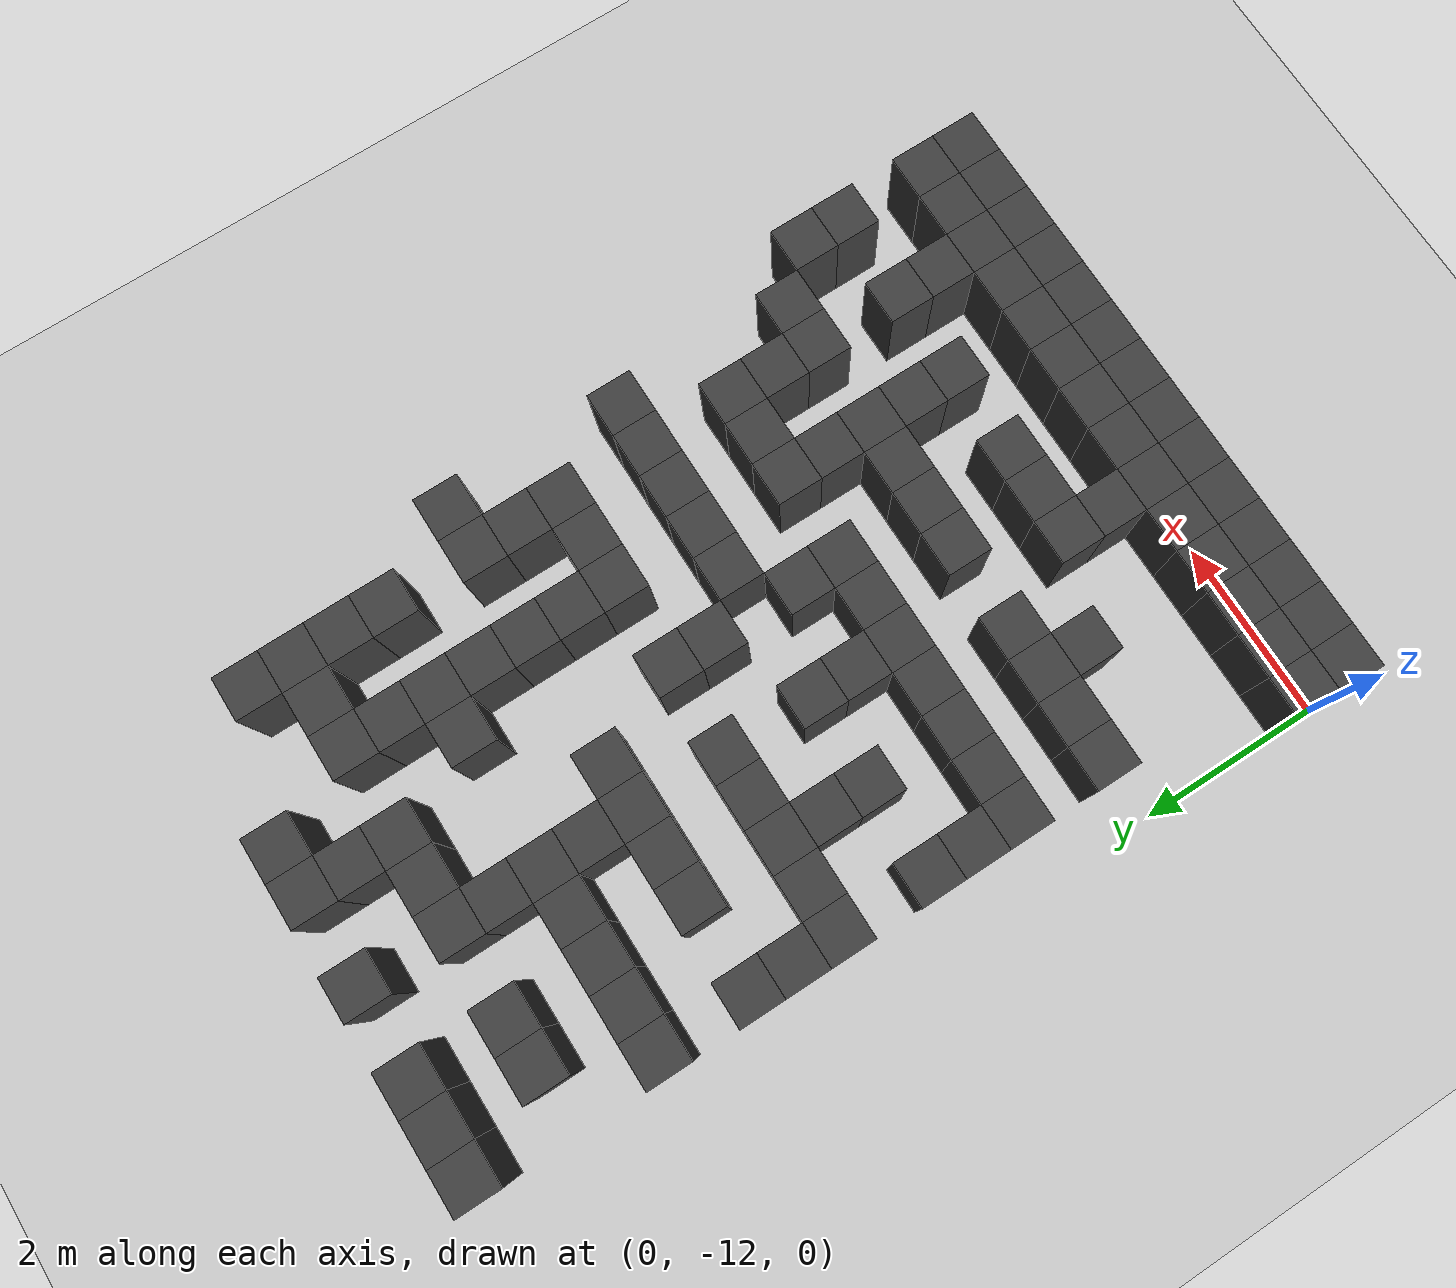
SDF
<sdf version="1.7">
 <world name="map_16048">
  <model name="ground_plane">
   <static>true</static>
   <link name="link">
    <collision name="collision">
     <geometry><plane><normal>0 0 1</normal><size>200 200</size></plane></geometry>
    </collision>
    <visual name="visual">
     <geometry><plane><normal>0 0 1</normal><size>200 200</size></plane></geometry>
     <material><ambient>0.8 0.8 0.8 1</ambient><diffuse>0.8 0.8 0.8 1</diffuse></material>
    </visual>
   </link>
  </model>
  <model name="maze_environment">
   <static>true</static>
   <link name="wall_730">
    <pose>0.750 -2.750 0.500 0 0 0</pose>
    <collision name="col"><geometry><box><size>0.5 0.5 1.0</size></box></geometry></collision>
    <visual name="vis">
     <geometry><box><size>0.5 0.5 1.0</size></box></geometry>
     <material><ambient>0.15 0.15 0.15 1</ambient><diffuse>0.25 0.25 0.25 1</diffuse></material>
    </visual>
   </link>
   <link name="wall_731">
    <pose>1.250 -2.750 0.500 0 0 0</pose>
    <collision name="col"><geometry><box><size>0.5 0.5 1.0</size></box></geometry></collision>
    <visual name="vis">
     <geometry><box><size>0.5 0.5 1.0</size></box></geometry>
     <material><ambient>0.15 0.15 0.15 1</ambient><diffuse>0.25 0.25 0.25 1</diffuse></material>
    </visual>
   </link>
   <link name="wall_732">
    <pose>1.750 -2.750 0.500 0 0 0</pose>
    <collision name="col"><geometry><box><size>0.5 0.5 1.0</size></box></geometry></collision>
    <visual name="vis">
     <geometry><box><size>0.5 0.5 1.0</size></box></geometry>
     <material><ambient>0.15 0.15 0.15 1</ambient><diffuse>0.25 0.25 0.25 1</diffuse></material>
    </visual>
   </link>
   <link name="wall_733">
    <pose>2.750 -2.750 0.500 0 0 0</pose>
    <collision name="col"><geometry><box><size>0.5 0.5 1.0</size></box></geometry></collision>
    <visual name="vis">
     <geometry><box><size>0.5 0.5 1.0</size></box></geometry>
     <material><ambient>0.15 0.15 0.15 1</ambient><diffuse>0.25 0.25 0.25 1</diffuse></material>
    </visual>
   </link>
   <link name="wall_734">
    <pose>3.750 -2.750 0.500 0 0 0</pose>
    <collision name="col"><geometry><box><size>0.5 0.5 1.0</size></box></geometry></collision>
    <visual name="vis">
     <geometry><box><size>0.5 0.5 1.0</size></box></geometry>
     <material><ambient>0.15 0.15 0.15 1</ambient><diffuse>0.25 0.25 0.25 1</diffuse></material>
    </visual>
   </link>
   <link name="wall_735">
    <pose>4.250 -2.750 0.500 0 0 0</pose>
    <collision name="col"><geometry><box><size>0.5 0.5 1.0</size></box></geometry></collision>
    <visual name="vis">
     <geometry><box><size>0.5 0.5 1.0</size></box></geometry>
     <material><ambient>0.15 0.15 0.15 1</ambient><diffuse>0.25 0.25 0.25 1</diffuse></material>
    </visual>
   </link>
   <link name="wall_756">
    <pose>3.750 -3.250 0.500 0 0 0</pose>
    <collision name="col"><geometry><box><size>0.5 0.5 1.0</size></box></geometry></collision>
    <visual name="vis">
     <geometry><box><size>0.5 0.5 1.0</size></box></geometry>
     <material><ambient>0.15 0.15 0.15 1</ambient><diffuse>0.25 0.25 0.25 1</diffuse></material>
    </visual>
   </link>
   <link name="wall_757">
    <pose>5.750 -3.250 0.500 0 0 0</pose>
    <collision name="col"><geometry><box><size>0.5 0.5 1.0</size></box></geometry></collision>
    <visual name="vis">
     <geometry><box><size>0.5 0.5 1.0</size></box></geometry>
     <material><ambient>0.15 0.15 0.15 1</ambient><diffuse>0.25 0.25 0.25 1</diffuse></material>
    </visual>
   </link>
   <link name="wall_778">
    <pose>1.250 -3.750 0.500 0 0 0</pose>
    <collision name="col"><geometry><box><size>0.5 0.5 1.0</size></box></geometry></collision>
    <visual name="vis">
     <geometry><box><size>0.5 0.5 1.0</size></box></geometry>
     <material><ambient>0.15 0.15 0.15 1</ambient><diffuse>0.25 0.25 0.25 1</diffuse></material>
    </visual>
   </link>
   <link name="wall_779">
    <pose>1.750 -3.750 0.500 0 0 0</pose>
    <collision name="col"><geometry><box><size>0.5 0.5 1.0</size></box></geometry></collision>
    <visual name="vis">
     <geometry><box><size>0.5 0.5 1.0</size></box></geometry>
     <material><ambient>0.15 0.15 0.15 1</ambient><diffuse>0.25 0.25 0.25 1</diffuse></material>
    </visual>
   </link>
   <link name="wall_780">
    <pose>2.750 -3.750 0.500 0 0 0</pose>
    <collision name="col"><geometry><box><size>0.5 0.5 1.0</size></box></geometry></collision>
    <visual name="vis">
     <geometry><box><size>0.5 0.5 1.0</size></box></geometry>
     <material><ambient>0.15 0.15 0.15 1</ambient><diffuse>0.25 0.25 0.25 1</diffuse></material>
    </visual>
   </link>
   <link name="wall_781">
    <pose>3.250 -3.750 0.500 0 0 0</pose>
    <collision name="col"><geometry><box><size>0.5 0.5 1.0</size></box></geometry></collision>
    <visual name="vis">
     <geometry><box><size>0.5 0.5 1.0</size></box></geometry>
     <material><ambient>0.15 0.15 0.15 1</ambient><diffuse>0.25 0.25 0.25 1</diffuse></material>
    </visual>
   </link>
   <link name="wall_782">
    <pose>3.750 -3.750 0.500 0 0 0</pose>
    <collision name="col"><geometry><box><size>0.5 0.5 1.0</size></box></geometry></collision>
    <visual name="vis">
     <geometry><box><size>0.5 0.5 1.0</size></box></geometry>
     <material><ambient>0.15 0.15 0.15 1</ambient><diffuse>0.25 0.25 0.25 1</diffuse></material>
    </visual>
   </link>
   <link name="wall_783">
    <pose>4.750 -3.750 0.500 0 0 0</pose>
    <collision name="col"><geometry><box><size>0.5 0.5 1.0</size></box></geometry></collision>
    <visual name="vis">
     <geometry><box><size>0.5 0.5 1.0</size></box></geometry>
     <material><ambient>0.15 0.15 0.15 1</ambient><diffuse>0.25 0.25 0.25 1</diffuse></material>
    </visual>
   </link>
   <link name="wall_784">
    <pose>5.250 -3.750 0.500 0 0 0</pose>
    <collision name="col"><geometry><box><size>0.5 0.5 1.0</size></box></geometry></collision>
    <visual name="vis">
     <geometry><box><size>0.5 0.5 1.0</size></box></geometry>
     <material><ambient>0.15 0.15 0.15 1</ambient><diffuse>0.25 0.25 0.25 1</diffuse></material>
    </visual>
   </link>
   <link name="wall_785">
    <pose>5.750 -3.750 0.500 0 0 0</pose>
    <collision name="col"><geometry><box><size>0.5 0.5 1.0</size></box></geometry></collision>
    <visual name="vis">
     <geometry><box><size>0.5 0.5 1.0</size></box></geometry>
     <material><ambient>0.15 0.15 0.15 1</ambient><diffuse>0.25 0.25 0.25 1</diffuse></material>
    </visual>
   </link>
   <link name="wall_802">
    <pose>2.750 -4.250 0.500 0 0 0</pose>
    <collision name="col"><geometry><box><size>0.5 0.5 1.0</size></box></geometry></collision>
    <visual name="vis">
     <geometry><box><size>0.5 0.5 1.0</size></box></geometry>
     <material><ambient>0.15 0.15 0.15 1</ambient><diffuse>0.25 0.25 0.25 1</diffuse></material>
    </visual>
   </link>
   <link name="wall_803">
    <pose>4.750 -4.250 0.500 0 0 0</pose>
    <collision name="col"><geometry><box><size>0.5 0.5 1.0</size></box></geometry></collision>
    <visual name="vis">
     <geometry><box><size>0.5 0.5 1.0</size></box></geometry>
     <material><ambient>0.15 0.15 0.15 1</ambient><diffuse>0.25 0.25 0.25 1</diffuse></material>
    </visual>
   </link>
   <link name="wall_804">
    <pose>5.750 -4.250 0.500 0 0 0</pose>
    <collision name="col"><geometry><box><size>0.5 0.5 1.0</size></box></geometry></collision>
    <visual name="vis">
     <geometry><box><size>0.5 0.5 1.0</size></box></geometry>
     <material><ambient>0.15 0.15 0.15 1</ambient><diffuse>0.25 0.25 0.25 1</diffuse></material>
    </visual>
   </link>
   <link name="wall_827">
    <pose>0.750 -4.750 0.500 0 0 0</pose>
    <collision name="col"><geometry><box><size>0.5 0.5 1.0</size></box></geometry></collision>
    <visual name="vis">
     <geometry><box><size>0.5 0.5 1.0</size></box></geometry>
     <material><ambient>0.15 0.15 0.15 1</ambient><diffuse>0.25 0.25 0.25 1</diffuse></material>
    </visual>
   </link>
   <link name="wall_828">
    <pose>1.250 -4.750 0.500 0 0 0</pose>
    <collision name="col"><geometry><box><size>0.5 0.5 1.0</size></box></geometry></collision>
    <visual name="vis">
     <geometry><box><size>0.5 0.5 1.0</size></box></geometry>
     <material><ambient>0.15 0.15 0.15 1</ambient><diffuse>0.25 0.25 0.25 1</diffuse></material>
    </visual>
   </link>
   <link name="wall_829">
    <pose>1.750 -4.750 0.500 0 0 0</pose>
    <collision name="col"><geometry><box><size>0.5 0.5 1.0</size></box></geometry></collision>
    <visual name="vis">
     <geometry><box><size>0.5 0.5 1.0</size></box></geometry>
     <material><ambient>0.15 0.15 0.15 1</ambient><diffuse>0.25 0.25 0.25 1</diffuse></material>
    </visual>
   </link>
   <link name="wall_830">
    <pose>2.250 -4.750 0.500 0 0 0</pose>
    <collision name="col"><geometry><box><size>0.5 0.5 1.0</size></box></geometry></collision>
    <visual name="vis">
     <geometry><box><size>0.5 0.5 1.0</size></box></geometry>
     <material><ambient>0.15 0.15 0.15 1</ambient><diffuse>0.25 0.25 0.25 1</diffuse></material>
    </visual>
   </link>
   <link name="wall_831">
    <pose>2.750 -4.750 0.500 0 0 0</pose>
    <collision name="col"><geometry><box><size>0.5 0.5 1.0</size></box></geometry></collision>
    <visual name="vis">
     <geometry><box><size>0.5 0.5 1.0</size></box></geometry>
     <material><ambient>0.15 0.15 0.15 1</ambient><diffuse>0.25 0.25 0.25 1</diffuse></material>
    </visual>
   </link>
   <link name="wall_832">
    <pose>4.250 -4.750 0.500 0 0 0</pose>
    <collision name="col"><geometry><box><size>0.5 0.5 1.0</size></box></geometry></collision>
    <visual name="vis">
     <geometry><box><size>0.5 0.5 1.0</size></box></geometry>
     <material><ambient>0.15 0.15 0.15 1</ambient><diffuse>0.25 0.25 0.25 1</diffuse></material>
    </visual>
   </link>
   <link name="wall_833">
    <pose>4.750 -4.750 0.500 0 0 0</pose>
    <collision name="col"><geometry><box><size>0.5 0.5 1.0</size></box></geometry></collision>
    <visual name="vis">
     <geometry><box><size>0.5 0.5 1.0</size></box></geometry>
     <material><ambient>0.15 0.15 0.15 1</ambient><diffuse>0.25 0.25 0.25 1</diffuse></material>
    </visual>
   </link>
   <link name="wall_834">
    <pose>5.750 -4.750 0.500 0 0 0</pose>
    <collision name="col"><geometry><box><size>0.5 0.5 1.0</size></box></geometry></collision>
    <visual name="vis">
     <geometry><box><size>0.5 0.5 1.0</size></box></geometry>
     <material><ambient>0.15 0.15 0.15 1</ambient><diffuse>0.25 0.25 0.25 1</diffuse></material>
    </visual>
   </link>
   <link name="wall_850">
    <pose>2.750 -5.250 0.500 0 0 0</pose>
    <collision name="col"><geometry><box><size>0.5 0.5 1.0</size></box></geometry></collision>
    <visual name="vis">
     <geometry><box><size>0.5 0.5 1.0</size></box></geometry>
     <material><ambient>0.15 0.15 0.15 1</ambient><diffuse>0.25 0.25 0.25 1</diffuse></material>
    </visual>
   </link>
   <link name="wall_851">
    <pose>4.750 -5.250 0.500 0 0 0</pose>
    <collision name="col"><geometry><box><size>0.5 0.5 1.0</size></box></geometry></collision>
    <visual name="vis">
     <geometry><box><size>0.5 0.5 1.0</size></box></geometry>
     <material><ambient>0.15 0.15 0.15 1</ambient><diffuse>0.25 0.25 0.25 1</diffuse></material>
    </visual>
   </link>
   <link name="wall_873">
    <pose>0.750 -5.750 0.500 0 0 0</pose>
    <collision name="col"><geometry><box><size>0.5 0.5 1.0</size></box></geometry></collision>
    <visual name="vis">
     <geometry><box><size>0.5 0.5 1.0</size></box></geometry>
     <material><ambient>0.15 0.15 0.15 1</ambient><diffuse>0.25 0.25 0.25 1</diffuse></material>
    </visual>
   </link>
   <link name="wall_874">
    <pose>1.750 -5.750 0.500 0 0 0</pose>
    <collision name="col"><geometry><box><size>0.5 0.5 1.0</size></box></geometry></collision>
    <visual name="vis">
     <geometry><box><size>0.5 0.5 1.0</size></box></geometry>
     <material><ambient>0.15 0.15 0.15 1</ambient><diffuse>0.25 0.25 0.25 1</diffuse></material>
    </visual>
   </link>
   <link name="wall_875">
    <pose>2.250 -5.750 0.500 0 0 0</pose>
    <collision name="col"><geometry><box><size>0.5 0.5 1.0</size></box></geometry></collision>
    <visual name="vis">
     <geometry><box><size>0.5 0.5 1.0</size></box></geometry>
     <material><ambient>0.15 0.15 0.15 1</ambient><diffuse>0.25 0.25 0.25 1</diffuse></material>
    </visual>
   </link>
   <link name="wall_876">
    <pose>2.750 -5.750 0.500 0 0 0</pose>
    <collision name="col"><geometry><box><size>0.5 0.5 1.0</size></box></geometry></collision>
    <visual name="vis">
     <geometry><box><size>0.5 0.5 1.0</size></box></geometry>
     <material><ambient>0.15 0.15 0.15 1</ambient><diffuse>0.25 0.25 0.25 1</diffuse></material>
    </visual>
   </link>
   <link name="wall_877">
    <pose>3.250 -5.750 0.500 0 0 0</pose>
    <collision name="col"><geometry><box><size>0.5 0.5 1.0</size></box></geometry></collision>
    <visual name="vis">
     <geometry><box><size>0.5 0.5 1.0</size></box></geometry>
     <material><ambient>0.15 0.15 0.15 1</ambient><diffuse>0.25 0.25 0.25 1</diffuse></material>
    </visual>
   </link>
   <link name="wall_878">
    <pose>4.750 -5.750 0.500 0 0 0</pose>
    <collision name="col"><geometry><box><size>0.5 0.5 1.0</size></box></geometry></collision>
    <visual name="vis">
     <geometry><box><size>0.5 0.5 1.0</size></box></geometry>
     <material><ambient>0.15 0.15 0.15 1</ambient><diffuse>0.25 0.25 0.25 1</diffuse></material>
    </visual>
   </link>
   <link name="wall_879">
    <pose>5.750 -5.750 0.500 0 0 0</pose>
    <collision name="col"><geometry><box><size>0.5 0.5 1.0</size></box></geometry></collision>
    <visual name="vis">
     <geometry><box><size>0.5 0.5 1.0</size></box></geometry>
     <material><ambient>0.15 0.15 0.15 1</ambient><diffuse>0.25 0.25 0.25 1</diffuse></material>
    </visual>
   </link>
   <link name="wall_880">
    <pose>6.250 -5.750 0.500 0 0 0</pose>
    <collision name="col"><geometry><box><size>0.5 0.5 1.0</size></box></geometry></collision>
    <visual name="vis">
     <geometry><box><size>0.5 0.5 1.0</size></box></geometry>
     <material><ambient>0.15 0.15 0.15 1</ambient><diffuse>0.25 0.25 0.25 1</diffuse></material>
    </visual>
   </link>
   <link name="wall_898">
    <pose>0.750 -6.250 0.500 0 0 0</pose>
    <collision name="col"><geometry><box><size>0.5 0.5 1.0</size></box></geometry></collision>
    <visual name="vis">
     <geometry><box><size>0.5 0.5 1.0</size></box></geometry>
     <material><ambient>0.15 0.15 0.15 1</ambient><diffuse>0.25 0.25 0.25 1</diffuse></material>
    </visual>
   </link>
   <link name="wall_899">
    <pose>4.750 -6.250 0.500 0 0 0</pose>
    <collision name="col"><geometry><box><size>0.5 0.5 1.0</size></box></geometry></collision>
    <visual name="vis">
     <geometry><box><size>0.5 0.5 1.0</size></box></geometry>
     <material><ambient>0.15 0.15 0.15 1</ambient><diffuse>0.25 0.25 0.25 1</diffuse></material>
    </visual>
   </link>
   <link name="wall_900">
    <pose>5.750 -6.250 0.500 0 0 0</pose>
    <collision name="col"><geometry><box><size>0.5 0.5 1.0</size></box></geometry></collision>
    <visual name="vis">
     <geometry><box><size>0.5 0.5 1.0</size></box></geometry>
     <material><ambient>0.15 0.15 0.15 1</ambient><diffuse>0.25 0.25 0.25 1</diffuse></material>
    </visual>
   </link>
   <link name="wall_920">
    <pose>0.750 -6.750 0.500 0 0 0</pose>
    <collision name="col"><geometry><box><size>0.5 0.5 1.0</size></box></geometry></collision>
    <visual name="vis">
     <geometry><box><size>0.5 0.5 1.0</size></box></geometry>
     <material><ambient>0.15 0.15 0.15 1</ambient><diffuse>0.25 0.25 0.25 1</diffuse></material>
    </visual>
   </link>
   <link name="wall_921">
    <pose>1.250 -6.750 0.500 0 0 0</pose>
    <collision name="col"><geometry><box><size>0.5 0.5 1.0</size></box></geometry></collision>
    <visual name="vis">
     <geometry><box><size>0.5 0.5 1.0</size></box></geometry>
     <material><ambient>0.15 0.15 0.15 1</ambient><diffuse>0.25 0.25 0.25 1</diffuse></material>
    </visual>
   </link>
   <link name="wall_922">
    <pose>1.750 -6.750 0.500 0 0 0</pose>
    <collision name="col"><geometry><box><size>0.5 0.5 1.0</size></box></geometry></collision>
    <visual name="vis">
     <geometry><box><size>0.5 0.5 1.0</size></box></geometry>
     <material><ambient>0.15 0.15 0.15 1</ambient><diffuse>0.25 0.25 0.25 1</diffuse></material>
    </visual>
   </link>
   <link name="wall_923">
    <pose>2.250 -6.750 0.500 0 0 0</pose>
    <collision name="col"><geometry><box><size>0.5 0.5 1.0</size></box></geometry></collision>
    <visual name="vis">
     <geometry><box><size>0.5 0.5 1.0</size></box></geometry>
     <material><ambient>0.15 0.15 0.15 1</ambient><diffuse>0.25 0.25 0.25 1</diffuse></material>
    </visual>
   </link>
   <link name="wall_924">
    <pose>2.750 -6.750 0.500 0 0 0</pose>
    <collision name="col"><geometry><box><size>0.5 0.5 1.0</size></box></geometry></collision>
    <visual name="vis">
     <geometry><box><size>0.5 0.5 1.0</size></box></geometry>
     <material><ambient>0.15 0.15 0.15 1</ambient><diffuse>0.25 0.25 0.25 1</diffuse></material>
    </visual>
   </link>
   <link name="wall_925">
    <pose>3.750 -6.750 0.500 0 0 0</pose>
    <collision name="col"><geometry><box><size>0.5 0.5 1.0</size></box></geometry></collision>
    <visual name="vis">
     <geometry><box><size>0.5 0.5 1.0</size></box></geometry>
     <material><ambient>0.15 0.15 0.15 1</ambient><diffuse>0.25 0.25 0.25 1</diffuse></material>
    </visual>
   </link>
   <link name="wall_926">
    <pose>4.750 -6.750 0.500 0 0 0</pose>
    <collision name="col"><geometry><box><size>0.5 0.5 1.0</size></box></geometry></collision>
    <visual name="vis">
     <geometry><box><size>0.5 0.5 1.0</size></box></geometry>
     <material><ambient>0.15 0.15 0.15 1</ambient><diffuse>0.25 0.25 0.25 1</diffuse></material>
    </visual>
   </link>
   <link name="wall_927">
    <pose>5.250 -6.750 0.500 0 0 0</pose>
    <collision name="col"><geometry><box><size>0.5 0.5 1.0</size></box></geometry></collision>
    <visual name="vis">
     <geometry><box><size>0.5 0.5 1.0</size></box></geometry>
     <material><ambient>0.15 0.15 0.15 1</ambient><diffuse>0.25 0.25 0.25 1</diffuse></material>
    </visual>
   </link>
   <link name="wall_928">
    <pose>5.750 -6.750 0.500 0 0 0</pose>
    <collision name="col"><geometry><box><size>0.5 0.5 1.0</size></box></geometry></collision>
    <visual name="vis">
     <geometry><box><size>0.5 0.5 1.0</size></box></geometry>
     <material><ambient>0.15 0.15 0.15 1</ambient><diffuse>0.25 0.25 0.25 1</diffuse></material>
    </visual>
   </link>
   <link name="wall_939">
    <pose>1.750 -7.250 0.500 0 0 0</pose>
    <collision name="col"><geometry><box><size>0.5 0.5 1.0</size></box></geometry></collision>
    <visual name="vis">
     <geometry><box><size>0.5 0.5 1.0</size></box></geometry>
     <material><ambient>0.15 0.15 0.15 1</ambient><diffuse>0.25 0.25 0.25 1</diffuse></material>
    </visual>
   </link>
   <link name="wall_940">
    <pose>3.750 -7.250 0.500 0 0 0</pose>
    <collision name="col"><geometry><box><size>0.5 0.5 1.0</size></box></geometry></collision>
    <visual name="vis">
     <geometry><box><size>0.5 0.5 1.0</size></box></geometry>
     <material><ambient>0.15 0.15 0.15 1</ambient><diffuse>0.25 0.25 0.25 1</diffuse></material>
    </visual>
   </link>
   <link name="wall_966">
    <pose>0.750 -7.750 0.500 0 0 0</pose>
    <collision name="col"><geometry><box><size>0.5 0.5 1.0</size></box></geometry></collision>
    <visual name="vis">
     <geometry><box><size>0.5 0.5 1.0</size></box></geometry>
     <material><ambient>0.15 0.15 0.15 1</ambient><diffuse>0.25 0.25 0.25 1</diffuse></material>
    </visual>
   </link>
   <link name="wall_967">
    <pose>1.750 -7.750 0.500 0 0 0</pose>
    <collision name="col"><geometry><box><size>0.5 0.5 1.0</size></box></geometry></collision>
    <visual name="vis">
     <geometry><box><size>0.5 0.5 1.0</size></box></geometry>
     <material><ambient>0.15 0.15 0.15 1</ambient><diffuse>0.25 0.25 0.25 1</diffuse></material>
    </visual>
   </link>
   <link name="wall_968">
    <pose>2.750 -7.750 0.500 0 0 0</pose>
    <collision name="col"><geometry><box><size>0.5 0.5 1.0</size></box></geometry></collision>
    <visual name="vis">
     <geometry><box><size>0.5 0.5 1.0</size></box></geometry>
     <material><ambient>0.15 0.15 0.15 1</ambient><diffuse>0.25 0.25 0.25 1</diffuse></material>
    </visual>
   </link>
   <link name="wall_969">
    <pose>4.250 -7.750 0.500 0 0 0</pose>
    <collision name="col"><geometry><box><size>0.5 0.5 1.0</size></box></geometry></collision>
    <visual name="vis">
     <geometry><box><size>0.5 0.5 1.0</size></box></geometry>
     <material><ambient>0.15 0.15 0.15 1</ambient><diffuse>0.25 0.25 0.25 1</diffuse></material>
    </visual>
   </link>
   <link name="wall_970">
    <pose>4.750 -7.750 0.500 0 0 0</pose>
    <collision name="col"><geometry><box><size>0.5 0.5 1.0</size></box></geometry></collision>
    <visual name="vis">
     <geometry><box><size>0.5 0.5 1.0</size></box></geometry>
     <material><ambient>0.15 0.15 0.15 1</ambient><diffuse>0.25 0.25 0.25 1</diffuse></material>
    </visual>
   </link>
   <link name="wall_971">
    <pose>5.250 -7.750 0.500 0 0 0</pose>
    <collision name="col"><geometry><box><size>0.5 0.5 1.0</size></box></geometry></collision>
    <visual name="vis">
     <geometry><box><size>0.5 0.5 1.0</size></box></geometry>
     <material><ambient>0.15 0.15 0.15 1</ambient><diffuse>0.25 0.25 0.25 1</diffuse></material>
    </visual>
   </link>
   <link name="wall_972">
    <pose>5.750 -7.750 0.500 0 0 0</pose>
    <collision name="col"><geometry><box><size>0.5 0.5 1.0</size></box></geometry></collision>
    <visual name="vis">
     <geometry><box><size>0.5 0.5 1.0</size></box></geometry>
     <material><ambient>0.15 0.15 0.15 1</ambient><diffuse>0.25 0.25 0.25 1</diffuse></material>
    </visual>
   </link>
   <link name="wall_973">
    <pose>6.250 -7.750 0.500 0 0 0</pose>
    <collision name="col"><geometry><box><size>0.5 0.5 1.0</size></box></geometry></collision>
    <visual name="vis">
     <geometry><box><size>0.5 0.5 1.0</size></box></geometry>
     <material><ambient>0.15 0.15 0.15 1</ambient><diffuse>0.25 0.25 0.25 1</diffuse></material>
    </visual>
   </link>
   <link name="wall_987">
    <pose>0.750 -8.250 0.500 0 0 0</pose>
    <collision name="col"><geometry><box><size>0.5 0.5 1.0</size></box></geometry></collision>
    <visual name="vis">
     <geometry><box><size>0.5 0.5 1.0</size></box></geometry>
     <material><ambient>0.15 0.15 0.15 1</ambient><diffuse>0.25 0.25 0.25 1</diffuse></material>
    </visual>
   </link>
   <link name="wall_988">
    <pose>2.750 -8.250 0.500 0 0 0</pose>
    <collision name="col"><geometry><box><size>0.5 0.5 1.0</size></box></geometry></collision>
    <visual name="vis">
     <geometry><box><size>0.5 0.5 1.0</size></box></geometry>
     <material><ambient>0.15 0.15 0.15 1</ambient><diffuse>0.25 0.25 0.25 1</diffuse></material>
    </visual>
   </link>
   <link name="wall_989">
    <pose>3.750 -8.250 0.500 0 0 0</pose>
    <collision name="col"><geometry><box><size>0.5 0.5 1.0</size></box></geometry></collision>
    <visual name="vis">
     <geometry><box><size>0.5 0.5 1.0</size></box></geometry>
     <material><ambient>0.15 0.15 0.15 1</ambient><diffuse>0.25 0.25 0.25 1</diffuse></material>
    </visual>
   </link>
   <link name="wall_1011">
    <pose>0.750 -8.750 0.500 0 0 0</pose>
    <collision name="col"><geometry><box><size>0.5 0.5 1.0</size></box></geometry></collision>
    <visual name="vis">
     <geometry><box><size>0.5 0.5 1.0</size></box></geometry>
     <material><ambient>0.15 0.15 0.15 1</ambient><diffuse>0.25 0.25 0.25 1</diffuse></material>
    </visual>
   </link>
   <link name="wall_1012">
    <pose>1.250 -8.750 0.500 0 0 0</pose>
    <collision name="col"><geometry><box><size>0.5 0.5 1.0</size></box></geometry></collision>
    <visual name="vis">
     <geometry><box><size>0.5 0.5 1.0</size></box></geometry>
     <material><ambient>0.15 0.15 0.15 1</ambient><diffuse>0.25 0.25 0.25 1</diffuse></material>
    </visual>
   </link>
   <link name="wall_1013">
    <pose>1.750 -8.750 0.500 0 0 0</pose>
    <collision name="col"><geometry><box><size>0.5 0.5 1.0</size></box></geometry></collision>
    <visual name="vis">
     <geometry><box><size>0.5 0.5 1.0</size></box></geometry>
     <material><ambient>0.15 0.15 0.15 1</ambient><diffuse>0.25 0.25 0.25 1</diffuse></material>
    </visual>
   </link>
   <link name="wall_1014">
    <pose>2.250 -8.750 0.500 0 0 0</pose>
    <collision name="col"><geometry><box><size>0.5 0.5 1.0</size></box></geometry></collision>
    <visual name="vis">
     <geometry><box><size>0.5 0.5 1.0</size></box></geometry>
     <material><ambient>0.15 0.15 0.15 1</ambient><diffuse>0.25 0.25 0.25 1</diffuse></material>
    </visual>
   </link>
   <link name="wall_1015">
    <pose>2.750 -8.750 0.500 0 0 0</pose>
    <collision name="col"><geometry><box><size>0.5 0.5 1.0</size></box></geometry></collision>
    <visual name="vis">
     <geometry><box><size>0.5 0.5 1.0</size></box></geometry>
     <material><ambient>0.15 0.15 0.15 1</ambient><diffuse>0.25 0.25 0.25 1</diffuse></material>
    </visual>
   </link>
   <link name="wall_1016">
    <pose>3.250 -8.750 0.500 0 0 0</pose>
    <collision name="col"><geometry><box><size>0.5 0.5 1.0</size></box></geometry></collision>
    <visual name="vis">
     <geometry><box><size>0.5 0.5 1.0</size></box></geometry>
     <material><ambient>0.15 0.15 0.15 1</ambient><diffuse>0.25 0.25 0.25 1</diffuse></material>
    </visual>
   </link>
   <link name="wall_1017">
    <pose>3.750 -8.750 0.500 0 0 0</pose>
    <collision name="col"><geometry><box><size>0.5 0.5 1.0</size></box></geometry></collision>
    <visual name="vis">
     <geometry><box><size>0.5 0.5 1.0</size></box></geometry>
     <material><ambient>0.15 0.15 0.15 1</ambient><diffuse>0.25 0.25 0.25 1</diffuse></material>
    </visual>
   </link>
   <link name="wall_1018">
    <pose>4.750 -8.750 0.500 0 0 0</pose>
    <collision name="col"><geometry><box><size>0.5 0.5 1.0</size></box></geometry></collision>
    <visual name="vis">
     <geometry><box><size>0.5 0.5 1.0</size></box></geometry>
     <material><ambient>0.15 0.15 0.15 1</ambient><diffuse>0.25 0.25 0.25 1</diffuse></material>
    </visual>
   </link>
   <link name="wall_1019">
    <pose>5.250 -8.750 0.500 0 0 0</pose>
    <collision name="col"><geometry><box><size>0.5 0.5 1.0</size></box></geometry></collision>
    <visual name="vis">
     <geometry><box><size>0.5 0.5 1.0</size></box></geometry>
     <material><ambient>0.15 0.15 0.15 1</ambient><diffuse>0.25 0.25 0.25 1</diffuse></material>
    </visual>
   </link>
   <link name="wall_1020">
    <pose>5.750 -8.750 0.500 0 0 0</pose>
    <collision name="col"><geometry><box><size>0.5 0.5 1.0</size></box></geometry></collision>
    <visual name="vis">
     <geometry><box><size>0.5 0.5 1.0</size></box></geometry>
     <material><ambient>0.15 0.15 0.15 1</ambient><diffuse>0.25 0.25 0.25 1</diffuse></material>
    </visual>
   </link>
   <link name="wall_1036">
    <pose>4.750 -9.250 0.500 0 0 0</pose>
    <collision name="col"><geometry><box><size>0.5 0.5 1.0</size></box></geometry></collision>
    <visual name="vis">
     <geometry><box><size>0.5 0.5 1.0</size></box></geometry>
     <material><ambient>0.15 0.15 0.15 1</ambient><diffuse>0.25 0.25 0.25 1</diffuse></material>
    </visual>
   </link>
   <link name="wall_1037">
    <pose>5.750 -9.250 0.500 0 0 0</pose>
    <collision name="col"><geometry><box><size>0.5 0.5 1.0</size></box></geometry></collision>
    <visual name="vis">
     <geometry><box><size>0.5 0.5 1.0</size></box></geometry>
     <material><ambient>0.15 0.15 0.15 1</ambient><diffuse>0.25 0.25 0.25 1</diffuse></material>
    </visual>
   </link>
   <link name="wall_1063">
    <pose>0.750 -9.750 0.500 0 0 0</pose>
    <collision name="col"><geometry><box><size>0.5 0.5 1.0</size></box></geometry></collision>
    <visual name="vis">
     <geometry><box><size>0.5 0.5 1.0</size></box></geometry>
     <material><ambient>0.15 0.15 0.15 1</ambient><diffuse>0.25 0.25 0.25 1</diffuse></material>
    </visual>
   </link>
   <link name="wall_1064">
    <pose>1.250 -9.750 0.500 0 0 0</pose>
    <collision name="col"><geometry><box><size>0.5 0.5 1.0</size></box></geometry></collision>
    <visual name="vis">
     <geometry><box><size>0.5 0.5 1.0</size></box></geometry>
     <material><ambient>0.15 0.15 0.15 1</ambient><diffuse>0.25 0.25 0.25 1</diffuse></material>
    </visual>
   </link>
   <link name="wall_1065">
    <pose>1.750 -9.750 0.500 0 0 0</pose>
    <collision name="col"><geometry><box><size>0.5 0.5 1.0</size></box></geometry></collision>
    <visual name="vis">
     <geometry><box><size>0.5 0.5 1.0</size></box></geometry>
     <material><ambient>0.15 0.15 0.15 1</ambient><diffuse>0.25 0.25 0.25 1</diffuse></material>
    </visual>
   </link>
   <link name="wall_1066">
    <pose>2.250 -9.750 0.500 0 0 0</pose>
    <collision name="col"><geometry><box><size>0.5 0.5 1.0</size></box></geometry></collision>
    <visual name="vis">
     <geometry><box><size>0.5 0.5 1.0</size></box></geometry>
     <material><ambient>0.15 0.15 0.15 1</ambient><diffuse>0.25 0.25 0.25 1</diffuse></material>
    </visual>
   </link>
   <link name="wall_1067">
    <pose>3.250 -9.750 0.500 0 0 0</pose>
    <collision name="col"><geometry><box><size>0.5 0.5 1.0</size></box></geometry></collision>
    <visual name="vis">
     <geometry><box><size>0.5 0.5 1.0</size></box></geometry>
     <material><ambient>0.15 0.15 0.15 1</ambient><diffuse>0.25 0.25 0.25 1</diffuse></material>
    </visual>
   </link>
   <link name="wall_1068">
    <pose>3.750 -9.750 0.500 0 0 0</pose>
    <collision name="col"><geometry><box><size>0.5 0.5 1.0</size></box></geometry></collision>
    <visual name="vis">
     <geometry><box><size>0.5 0.5 1.0</size></box></geometry>
     <material><ambient>0.15 0.15 0.15 1</ambient><diffuse>0.25 0.25 0.25 1</diffuse></material>
    </visual>
   </link>
   <link name="wall_1069">
    <pose>4.250 -9.750 0.500 0 0 0</pose>
    <collision name="col"><geometry><box><size>0.5 0.5 1.0</size></box></geometry></collision>
    <visual name="vis">
     <geometry><box><size>0.5 0.5 1.0</size></box></geometry>
     <material><ambient>0.15 0.15 0.15 1</ambient><diffuse>0.25 0.25 0.25 1</diffuse></material>
    </visual>
   </link>
   <link name="wall_1070">
    <pose>4.750 -9.750 0.500 0 0 0</pose>
    <collision name="col"><geometry><box><size>0.5 0.5 1.0</size></box></geometry></collision>
    <visual name="vis">
     <geometry><box><size>0.5 0.5 1.0</size></box></geometry>
     <material><ambient>0.15 0.15 0.15 1</ambient><diffuse>0.25 0.25 0.25 1</diffuse></material>
    </visual>
   </link>
   <link name="wall_1071">
    <pose>5.750 -9.750 0.500 0 0 0</pose>
    <collision name="col"><geometry><box><size>0.5 0.5 1.0</size></box></geometry></collision>
    <visual name="vis">
     <geometry><box><size>0.5 0.5 1.0</size></box></geometry>
     <material><ambient>0.15 0.15 0.15 1</ambient><diffuse>0.25 0.25 0.25 1</diffuse></material>
    </visual>
   </link>
   <link name="wall_1072">
    <pose>6.250 -9.750 0.500 0 0 0</pose>
    <collision name="col"><geometry><box><size>0.5 0.5 1.0</size></box></geometry></collision>
    <visual name="vis">
     <geometry><box><size>0.5 0.5 1.0</size></box></geometry>
     <material><ambient>0.15 0.15 0.15 1</ambient><diffuse>0.25 0.25 0.25 1</diffuse></material>
    </visual>
   </link>
   <link name="wall_1088">
    <pose>1.750 -10.250 0.500 0 0 0</pose>
    <collision name="col"><geometry><box><size>0.5 0.5 1.0</size></box></geometry></collision>
    <visual name="vis">
     <geometry><box><size>0.5 0.5 1.0</size></box></geometry>
     <material><ambient>0.15 0.15 0.15 1</ambient><diffuse>0.25 0.25 0.25 1</diffuse></material>
    </visual>
   </link>
   <link name="wall_1089">
    <pose>4.750 -10.250 0.500 0 0 0</pose>
    <collision name="col"><geometry><box><size>0.5 0.5 1.0</size></box></geometry></collision>
    <visual name="vis">
     <geometry><box><size>0.5 0.5 1.0</size></box></geometry>
     <material><ambient>0.15 0.15 0.15 1</ambient><diffuse>0.25 0.25 0.25 1</diffuse></material>
    </visual>
   </link>
   <link name="wall_1090">
    <pose>6.750 -10.250 0.500 0 0 0</pose>
    <collision name="col"><geometry><box><size>0.5 0.5 1.0</size></box></geometry></collision>
    <visual name="vis">
     <geometry><box><size>0.5 0.5 1.0</size></box></geometry>
     <material><ambient>0.15 0.15 0.15 1</ambient><diffuse>0.25 0.25 0.25 1</diffuse></material>
    </visual>
   </link>
   <link name="wall_1108">
    <pose>2.750 -10.750 0.500 0 0 0</pose>
    <collision name="col"><geometry><box><size>0.5 0.5 1.0</size></box></geometry></collision>
    <visual name="vis">
     <geometry><box><size>0.5 0.5 1.0</size></box></geometry>
     <material><ambient>0.15 0.15 0.15 1</ambient><diffuse>0.25 0.25 0.25 1</diffuse></material>
    </visual>
   </link>
   <link name="wall_1109">
    <pose>3.250 -10.750 0.500 0 0 0</pose>
    <collision name="col"><geometry><box><size>0.5 0.5 1.0</size></box></geometry></collision>
    <visual name="vis">
     <geometry><box><size>0.5 0.5 1.0</size></box></geometry>
     <material><ambient>0.15 0.15 0.15 1</ambient><diffuse>0.25 0.25 0.25 1</diffuse></material>
    </visual>
   </link>
   <link name="wall_1110">
    <pose>3.750 -10.750 0.500 0 0 0</pose>
    <collision name="col"><geometry><box><size>0.5 0.5 1.0</size></box></geometry></collision>
    <visual name="vis">
     <geometry><box><size>0.5 0.5 1.0</size></box></geometry>
     <material><ambient>0.15 0.15 0.15 1</ambient><diffuse>0.25 0.25 0.25 1</diffuse></material>
    </visual>
   </link>
   <link name="wall_1111">
    <pose>4.750 -10.750 0.500 0 0 0</pose>
    <collision name="col"><geometry><box><size>0.5 0.5 1.0</size></box></geometry></collision>
    <visual name="vis">
     <geometry><box><size>0.5 0.5 1.0</size></box></geometry>
     <material><ambient>0.15 0.15 0.15 1</ambient><diffuse>0.25 0.25 0.25 1</diffuse></material>
    </visual>
   </link>
   <link name="wall_1112">
    <pose>5.750 -10.750 0.500 0 0 0</pose>
    <collision name="col"><geometry><box><size>0.5 0.5 1.0</size></box></geometry></collision>
    <visual name="vis">
     <geometry><box><size>0.5 0.5 1.0</size></box></geometry>
     <material><ambient>0.15 0.15 0.15 1</ambient><diffuse>0.25 0.25 0.25 1</diffuse></material>
    </visual>
   </link>
   <link name="wall_1113">
    <pose>6.750 -10.750 0.500 0 0 0</pose>
    <collision name="col"><geometry><box><size>0.5 0.5 1.0</size></box></geometry></collision>
    <visual name="vis">
     <geometry><box><size>0.5 0.5 1.0</size></box></geometry>
     <material><ambient>0.15 0.15 0.15 1</ambient><diffuse>0.25 0.25 0.25 1</diffuse></material>
    </visual>
   </link>
   <link name="wall_1124">
    <pose>2.750 -11.250 0.500 0 0 0</pose>
    <collision name="col"><geometry><box><size>0.5 0.5 1.0</size></box></geometry></collision>
    <visual name="vis">
     <geometry><box><size>0.5 0.5 1.0</size></box></geometry>
     <material><ambient>0.15 0.15 0.15 1</ambient><diffuse>0.25 0.25 0.25 1</diffuse></material>
    </visual>
   </link>
   <link name="wall_1125">
    <pose>5.750 -11.250 0.500 0 0 0</pose>
    <collision name="col"><geometry><box><size>0.5 0.5 1.0</size></box></geometry></collision>
    <visual name="vis">
     <geometry><box><size>0.5 0.5 1.0</size></box></geometry>
     <material><ambient>0.15 0.15 0.15 1</ambient><diffuse>0.25 0.25 0.25 1</diffuse></material>
    </visual>
   </link>
   <link name="wall_1153">
    <pose>0.250 -11.750 0.500 0 0 0</pose>
    <collision name="col"><geometry><box><size>0.5 0.5 1.0</size></box></geometry></collision>
    <visual name="vis">
     <geometry><box><size>0.5 0.5 1.0</size></box></geometry>
     <material><ambient>0.15 0.15 0.15 1</ambient><diffuse>0.25 0.25 0.25 1</diffuse></material>
    </visual>
   </link>
   <link name="wall_1154">
    <pose>0.750 -11.750 0.500 0 0 0</pose>
    <collision name="col"><geometry><box><size>0.5 0.5 1.0</size></box></geometry></collision>
    <visual name="vis">
     <geometry><box><size>0.5 0.5 1.0</size></box></geometry>
     <material><ambient>0.15 0.15 0.15 1</ambient><diffuse>0.25 0.25 0.25 1</diffuse></material>
    </visual>
   </link>
   <link name="wall_1155">
    <pose>1.250 -11.750 0.500 0 0 0</pose>
    <collision name="col"><geometry><box><size>0.5 0.5 1.0</size></box></geometry></collision>
    <visual name="vis">
     <geometry><box><size>0.5 0.5 1.0</size></box></geometry>
     <material><ambient>0.15 0.15 0.15 1</ambient><diffuse>0.25 0.25 0.25 1</diffuse></material>
    </visual>
   </link>
   <link name="wall_1156">
    <pose>1.750 -11.750 0.500 0 0 0</pose>
    <collision name="col"><geometry><box><size>0.5 0.5 1.0</size></box></geometry></collision>
    <visual name="vis">
     <geometry><box><size>0.5 0.5 1.0</size></box></geometry>
     <material><ambient>0.15 0.15 0.15 1</ambient><diffuse>0.25 0.25 0.25 1</diffuse></material>
    </visual>
   </link>
   <link name="wall_1157">
    <pose>2.250 -11.750 0.500 0 0 0</pose>
    <collision name="col"><geometry><box><size>0.5 0.5 1.0</size></box></geometry></collision>
    <visual name="vis">
     <geometry><box><size>0.5 0.5 1.0</size></box></geometry>
     <material><ambient>0.15 0.15 0.15 1</ambient><diffuse>0.25 0.25 0.25 1</diffuse></material>
    </visual>
   </link>
   <link name="wall_1158">
    <pose>2.750 -11.750 0.500 0 0 0</pose>
    <collision name="col"><geometry><box><size>0.5 0.5 1.0</size></box></geometry></collision>
    <visual name="vis">
     <geometry><box><size>0.5 0.5 1.0</size></box></geometry>
     <material><ambient>0.15 0.15 0.15 1</ambient><diffuse>0.25 0.25 0.25 1</diffuse></material>
    </visual>
   </link>
   <link name="wall_1159">
    <pose>3.250 -11.750 0.500 0 0 0</pose>
    <collision name="col"><geometry><box><size>0.5 0.5 1.0</size></box></geometry></collision>
    <visual name="vis">
     <geometry><box><size>0.5 0.5 1.0</size></box></geometry>
     <material><ambient>0.15 0.15 0.15 1</ambient><diffuse>0.25 0.25 0.25 1</diffuse></material>
    </visual>
   </link>
   <link name="wall_1160">
    <pose>3.750 -11.750 0.500 0 0 0</pose>
    <collision name="col"><geometry><box><size>0.5 0.5 1.0</size></box></geometry></collision>
    <visual name="vis">
     <geometry><box><size>0.5 0.5 1.0</size></box></geometry>
     <material><ambient>0.15 0.15 0.15 1</ambient><diffuse>0.25 0.25 0.25 1</diffuse></material>
    </visual>
   </link>
   <link name="wall_1161">
    <pose>4.250 -11.750 0.500 0 0 0</pose>
    <collision name="col"><geometry><box><size>0.5 0.5 1.0</size></box></geometry></collision>
    <visual name="vis">
     <geometry><box><size>0.5 0.5 1.0</size></box></geometry>
     <material><ambient>0.15 0.15 0.15 1</ambient><diffuse>0.25 0.25 0.25 1</diffuse></material>
    </visual>
   </link>
   <link name="wall_1162">
    <pose>4.750 -11.750 0.500 0 0 0</pose>
    <collision name="col"><geometry><box><size>0.5 0.5 1.0</size></box></geometry></collision>
    <visual name="vis">
     <geometry><box><size>0.5 0.5 1.0</size></box></geometry>
     <material><ambient>0.15 0.15 0.15 1</ambient><diffuse>0.25 0.25 0.25 1</diffuse></material>
    </visual>
   </link>
   <link name="wall_1163">
    <pose>5.250 -11.750 0.500 0 0 0</pose>
    <collision name="col"><geometry><box><size>0.5 0.5 1.0</size></box></geometry></collision>
    <visual name="vis">
     <geometry><box><size>0.5 0.5 1.0</size></box></geometry>
     <material><ambient>0.15 0.15 0.15 1</ambient><diffuse>0.25 0.25 0.25 1</diffuse></material>
    </visual>
   </link>
   <link name="wall_1164">
    <pose>5.750 -11.750 0.500 0 0 0</pose>
    <collision name="col"><geometry><box><size>0.5 0.5 1.0</size></box></geometry></collision>
    <visual name="vis">
     <geometry><box><size>0.5 0.5 1.0</size></box></geometry>
     <material><ambient>0.15 0.15 0.15 1</ambient><diffuse>0.25 0.25 0.25 1</diffuse></material>
    </visual>
   </link>
   <link name="wall_1165">
    <pose>6.250 -11.750 0.500 0 0 0</pose>
    <collision name="col"><geometry><box><size>0.5 0.5 1.0</size></box></geometry></collision>
    <visual name="vis">
     <geometry><box><size>0.5 0.5 1.0</size></box></geometry>
     <material><ambient>0.15 0.15 0.15 1</ambient><diffuse>0.25 0.25 0.25 1</diffuse></material>
    </visual>
   </link>
   <link name="wall_1166">
    <pose>6.750 -11.750 0.500 0 0 0</pose>
    <collision name="col"><geometry><box><size>0.5 0.5 1.0</size></box></geometry></collision>
    <visual name="vis">
     <geometry><box><size>0.5 0.5 1.0</size></box></geometry>
     <material><ambient>0.15 0.15 0.15 1</ambient><diffuse>0.25 0.25 0.25 1</diffuse></material>
    </visual>
   </link>
   <link name="wall_1201">
    <pose>0.250 -12.250 0.500 0 0 0</pose>
    <collision name="col"><geometry><box><size>0.5 0.5 1.0</size></box></geometry></collision>
    <visual name="vis">
     <geometry><box><size>0.5 0.5 1.0</size></box></geometry>
     <material><ambient>0.15 0.15 0.15 1</ambient><diffuse>0.25 0.25 0.25 1</diffuse></material>
    </visual>
   </link>
   <link name="wall_1202">
    <pose>0.750 -12.250 0.500 0 0 0</pose>
    <collision name="col"><geometry><box><size>0.5 0.5 1.0</size></box></geometry></collision>
    <visual name="vis">
     <geometry><box><size>0.5 0.5 1.0</size></box></geometry>
     <material><ambient>0.15 0.15 0.15 1</ambient><diffuse>0.25 0.25 0.25 1</diffuse></material>
    </visual>
   </link>
   <link name="wall_1203">
    <pose>1.250 -12.250 0.500 0 0 0</pose>
    <collision name="col"><geometry><box><size>0.5 0.5 1.0</size></box></geometry></collision>
    <visual name="vis">
     <geometry><box><size>0.5 0.5 1.0</size></box></geometry>
     <material><ambient>0.15 0.15 0.15 1</ambient><diffuse>0.25 0.25 0.25 1</diffuse></material>
    </visual>
   </link>
   <link name="wall_1204">
    <pose>1.750 -12.250 0.500 0 0 0</pose>
    <collision name="col"><geometry><box><size>0.5 0.5 1.0</size></box></geometry></collision>
    <visual name="vis">
     <geometry><box><size>0.5 0.5 1.0</size></box></geometry>
     <material><ambient>0.15 0.15 0.15 1</ambient><diffuse>0.25 0.25 0.25 1</diffuse></material>
    </visual>
   </link>
   <link name="wall_1205">
    <pose>2.250 -12.250 0.500 0 0 0</pose>
    <collision name="col"><geometry><box><size>0.5 0.5 1.0</size></box></geometry></collision>
    <visual name="vis">
     <geometry><box><size>0.5 0.5 1.0</size></box></geometry>
     <material><ambient>0.15 0.15 0.15 1</ambient><diffuse>0.25 0.25 0.25 1</diffuse></material>
    </visual>
   </link>
   <link name="wall_1206">
    <pose>2.750 -12.250 0.500 0 0 0</pose>
    <collision name="col"><geometry><box><size>0.5 0.5 1.0</size></box></geometry></collision>
    <visual name="vis">
     <geometry><box><size>0.5 0.5 1.0</size></box></geometry>
     <material><ambient>0.15 0.15 0.15 1</ambient><diffuse>0.25 0.25 0.25 1</diffuse></material>
    </visual>
   </link>
   <link name="wall_1207">
    <pose>3.250 -12.250 0.500 0 0 0</pose>
    <collision name="col"><geometry><box><size>0.5 0.5 1.0</size></box></geometry></collision>
    <visual name="vis">
     <geometry><box><size>0.5 0.5 1.0</size></box></geometry>
     <material><ambient>0.15 0.15 0.15 1</ambient><diffuse>0.25 0.25 0.25 1</diffuse></material>
    </visual>
   </link>
   <link name="wall_1208">
    <pose>3.750 -12.250 0.500 0 0 0</pose>
    <collision name="col"><geometry><box><size>0.5 0.5 1.0</size></box></geometry></collision>
    <visual name="vis">
     <geometry><box><size>0.5 0.5 1.0</size></box></geometry>
     <material><ambient>0.15 0.15 0.15 1</ambient><diffuse>0.25 0.25 0.25 1</diffuse></material>
    </visual>
   </link>
   <link name="wall_1209">
    <pose>4.250 -12.250 0.500 0 0 0</pose>
    <collision name="col"><geometry><box><size>0.5 0.5 1.0</size></box></geometry></collision>
    <visual name="vis">
     <geometry><box><size>0.5 0.5 1.0</size></box></geometry>
     <material><ambient>0.15 0.15 0.15 1</ambient><diffuse>0.25 0.25 0.25 1</diffuse></material>
    </visual>
   </link>
   <link name="wall_1210">
    <pose>4.750 -12.250 0.500 0 0 0</pose>
    <collision name="col"><geometry><box><size>0.5 0.5 1.0</size></box></geometry></collision>
    <visual name="vis">
     <geometry><box><size>0.5 0.5 1.0</size></box></geometry>
     <material><ambient>0.15 0.15 0.15 1</ambient><diffuse>0.25 0.25 0.25 1</diffuse></material>
    </visual>
   </link>
   <link name="wall_1211">
    <pose>5.250 -12.250 0.500 0 0 0</pose>
    <collision name="col"><geometry><box><size>0.5 0.5 1.0</size></box></geometry></collision>
    <visual name="vis">
     <geometry><box><size>0.5 0.5 1.0</size></box></geometry>
     <material><ambient>0.15 0.15 0.15 1</ambient><diffuse>0.25 0.25 0.25 1</diffuse></material>
    </visual>
   </link>
   <link name="wall_1212">
    <pose>5.750 -12.250 0.500 0 0 0</pose>
    <collision name="col"><geometry><box><size>0.5 0.5 1.0</size></box></geometry></collision>
    <visual name="vis">
     <geometry><box><size>0.5 0.5 1.0</size></box></geometry>
     <material><ambient>0.15 0.15 0.15 1</ambient><diffuse>0.25 0.25 0.25 1</diffuse></material>
    </visual>
   </link>
   <link name="wall_1213">
    <pose>6.250 -12.250 0.500 0 0 0</pose>
    <collision name="col"><geometry><box><size>0.5 0.5 1.0</size></box></geometry></collision>
    <visual name="vis">
     <geometry><box><size>0.5 0.5 1.0</size></box></geometry>
     <material><ambient>0.15 0.15 0.15 1</ambient><diffuse>0.25 0.25 0.25 1</diffuse></material>
    </visual>
   </link>
   <link name="wall_1214">
    <pose>6.750 -12.250 0.500 0 0 0</pose>
    <collision name="col"><geometry><box><size>0.5 0.5 1.0</size></box></geometry></collision>
    <visual name="vis">
     <geometry><box><size>0.5 0.5 1.0</size></box></geometry>
     <material><ambient>0.15 0.15 0.15 1</ambient><diffuse>0.25 0.25 0.25 1</diffuse></material>
    </visual>
   </link>
  </model>
 </world>
</sdf>
